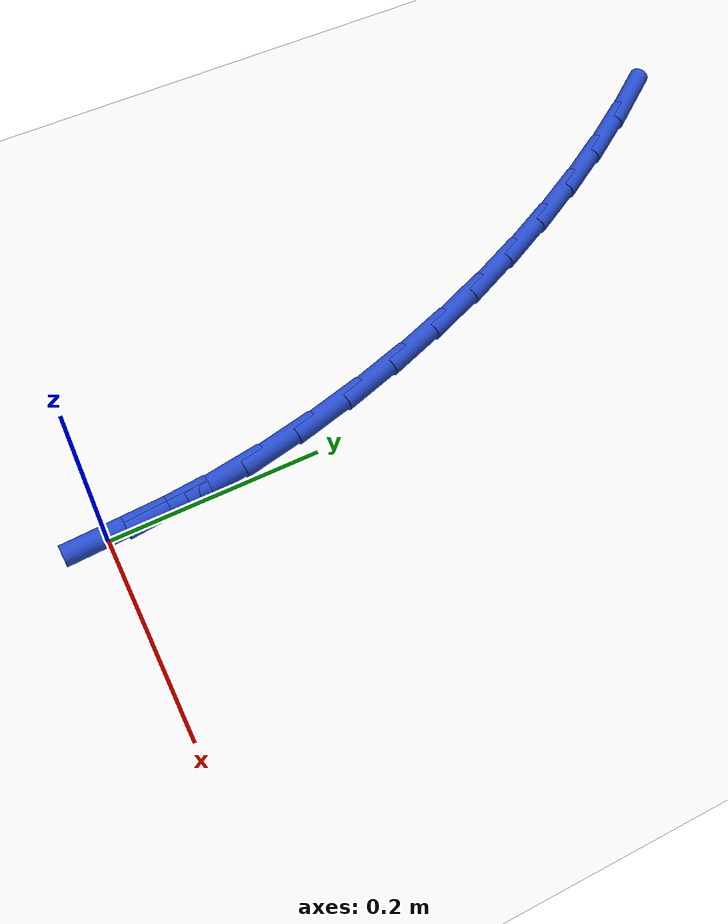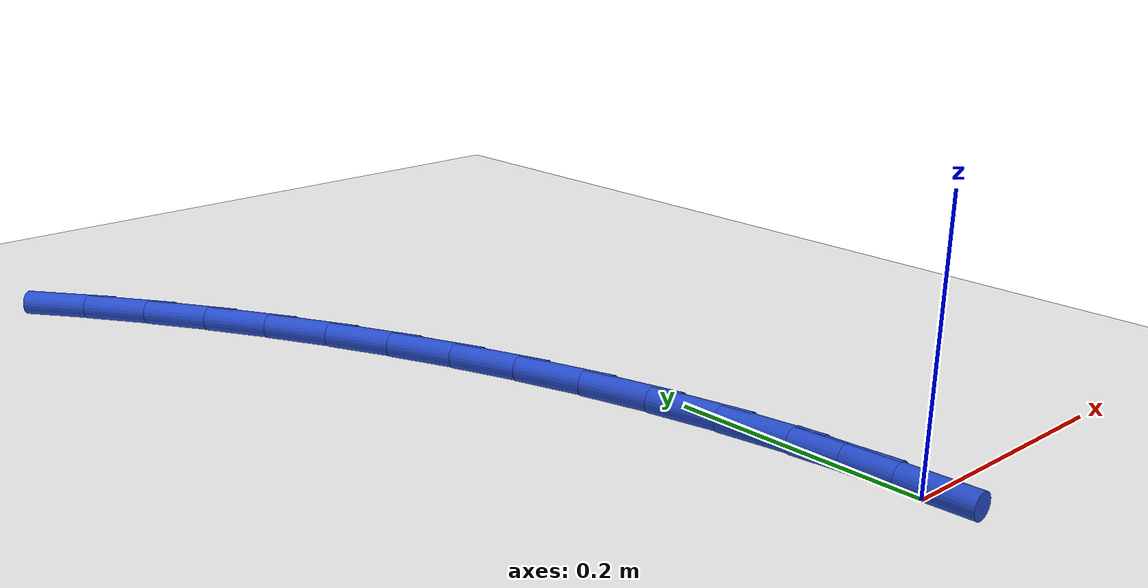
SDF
<sdf version="1.6">
 <world name="default">
  <model name="ground_plane">
   <static>1</static>
   <link name="link">
    <collision name="collision">
     <geometry><plane><normal>0 0 1</normal><size>100 100</size></plane></geometry>
     <surface><friction><ode><mu>100</mu><mu2>50</mu2></ode></friction></surface>
    </collision>
    <visual name="visual">
     <cast_shadows>0</cast_shadows>
     <geometry><plane><normal>0 0 1</normal><size>100 100</size></plane></geometry>
     <material>
      <script><uri>file://media/materials/scripts/gazebo.material</uri><name>Gazebo/WhiteGlow</name></script>
     </material>
    </visual>
   </link>
  </model>
  <model name="line">
   <link name="link_0">
    <pose>3.469446951953614e-17 -1.3877787807814457e-16 0.01 0 1.57 -1.5249691449820464</pose>
    <collision name="collision">
     <geometry><cylinder><radius>0.01</radius><length>0.08</length></cylinder></geometry>
    </collision>
    <visual name="visual">
     <material>
      <script><name>Gazebo/Blue</name><uri>file://media/materials/scripts/gazebo.material</uri></script>
     </material>
     <geometry><cylinder><radius>0.01</radius><length>0.08</length></cylinder></geometry>
    </visual>
   </link>
   <link name="link_1">
    <pose>-0.0026201253751024474 0.05713401550896852 0.01 0 1.57 -1.4662823298546048</pose>
    <collision name="collision">
     <geometry><cylinder><radius>0.01</radius><length>0.08</length></cylinder></geometry>
    </collision>
    <visual name="visual">
     <material>
      <script><name>Gazebo/Blue</name><uri>file://media/materials/scripts/gazebo.material</uri></script>
     </material>
     <geometry><cylinder><radius>0.01</radius><length>0.08</length></cylinder></geometry>
    </visual>
   </link>
   <link name="link_2">
    <pose>-0.008565467711774877 0.11381234942085036 0.01 0 1.57 -1.409943396037971</pose>
    <collision name="collision">
     <geometry><cylinder><radius>0.01</radius><length>0.08</length></cylinder></geometry>
    </collision>
    <visual name="visual">
     <material>
      <script><name>Gazebo/Blue</name><uri>file://media/materials/scripts/gazebo.material</uri></script>
     </material>
     <geometry><cylinder><radius>0.01</radius><length>0.08</length></cylinder></geometry>
    </visual>
   </link>
   <link name="link_3">
    <pose>-0.017676663586495254 0.16996600445761664 0.01 0 1.57 -1.3560580900631707</pose>
    <collision name="collision">
     <geometry><cylinder><radius>0.01</radius><length>0.08</length></cylinder></geometry>
    </collision>
    <visual name="visual">
     <material>
      <script><name>Gazebo/Blue</name><uri>file://media/materials/scripts/gazebo.material</uri></script>
     </material>
     <geometry><cylinder><radius>0.01</radius><length>0.08</length></cylinder></geometry>
    </visual>
   </link>
   <link name="link_4">
    <pose>-0.02979434957574161 0.22552598334123883 0.01 0 1.57 -1.304666011860201</pose>
    <collision name="collision">
     <geometry><cylinder><radius>0.01</radius><length>0.08</length></cylinder></geometry>
    </collision>
    <visual name="visual">
     <material>
      <script><name>Gazebo/Blue</name><uri>file://media/materials/scripts/gazebo.material</uri></script>
     </material>
     <geometry><cylinder><radius>0.01</radius><length>0.08</length></cylinder></geometry>
    </visual>
   </link>
   <link name="link_5">
    <pose>-0.04475916225599199 0.2804232887936883 0.01 0 1.57 -1.2557506976520483</pose>
    <collision name="collision">
     <geometry><cylinder><radius>0.01</radius><length>0.08</length></cylinder></geometry>
    </collision>
    <visual name="visual">
     <material>
      <script><name>Gazebo/Blue</name><uri>file://media/materials/scripts/gazebo.material</uri></script>
     </material>
     <geometry><cylinder><radius>0.01</radius><length>0.08</length></cylinder></geometry>
    </visual>
   </link>
   <link name="link_6">
    <pose>-0.06241173820372445 0.33458892353693637 0.01 0 1.57 -1.2092502591476344</pose>
    <collision name="collision">
     <geometry><cylinder><radius>0.01</radius><length>0.08</length></cylinder></geometry>
    </collision>
    <visual name="visual">
     <material>
      <script><name>Gazebo/Blue</name><uri>file://media/materials/scripts/gazebo.material</uri></script>
     </material>
     <geometry><cylinder><radius>0.01</radius><length>0.08</length></cylinder></geometry>
    </visual>
   </link>
   <link name="link_7">
    <pose>-0.08259271399541693 0.38795389029295446 0.01 0 1.57 -1.165067568374727</pose>
    <collision name="collision">
     <geometry><cylinder><radius>0.01</radius><length>0.08</length></cylinder></geometry>
    </collision>
    <visual name="visual">
     <material>
      <script><name>Gazebo/Blue</name><uri>file://media/materials/scripts/gazebo.material</uri></script>
     </material>
     <geometry><cylinder><radius>0.01</radius><length>0.08</length></cylinder></geometry>
    </visual>
   </link>
   <link name="link_8">
    <pose>-0.1051427262075475 0.4404491917837137 0.01 0 1.57 -1.1230793424892314</pose>
    <collision name="collision">
     <geometry><cylinder><radius>0.01</radius><length>0.08</length></cylinder></geometry>
    </collision>
    <visual name="visual">
     <material>
      <script><name>Gazebo/Blue</name><uri>file://media/materials/scripts/gazebo.material</uri></script>
     </material>
     <geometry><cylinder><radius>0.01</radius><length>0.08</length></cylinder></geometry>
    </visual>
   </link>
   <link name="link_9">
    <pose>-0.1299024114165942 0.4920058307311859 0.01 0 1.57 -1.0829022596027684</pose>
    <collision name="collision">
     <geometry><cylinder><radius>0.01</radius><length>0.08</length></cylinder></geometry>
    </collision>
    <visual name="visual">
     <material>
      <script><name>Gazebo/Blue</name><uri>file://media/materials/scripts/gazebo.material</uri></script>
     </material>
     <geometry><cylinder><radius>0.01</radius><length>0.08</length></cylinder></geometry>
    </visual>
   </link>
   <link name="link_10">
    <pose>-0.1567261533971119 0.5425512321120382 0.01 0 1.57 -1.042847974008835</pose>
    <collision name="collision">
     <geometry><cylinder><radius>0.01</radius><length>0.08</length></cylinder></geometry>
    </collision>
    <visual name="visual">
     <material>
      <script><name>Gazebo/Blue</name><uri>file://media/materials/scripts/gazebo.material</uri></script>
     </material>
     <geometry><cylinder><radius>0.01</radius><length>0.08</length></cylinder></geometry>
    </visual>
   </link>
   <link name="link_11">
    <pose>-0.18555694074545528 0.5919897612595593 0.01 0 1.57 -1.0022077488939667</pose>
    <collision name="collision">
     <geometry><cylinder><radius>0.01</radius><length>0.08</length></cylinder></geometry>
    </collision>
    <visual name="visual">
     <material>
      <script><name>Gazebo/Blue</name><uri>file://media/materials/scripts/gazebo.material</uri></script>
     </material>
     <geometry><cylinder><radius>0.01</radius><length>0.08</length></cylinder></geometry>
    </visual>
   </link>
   <link name="link_12">
    <pose>-0.21637290473974563 0.6402166375295115 0.01 0 1.57 -0.9608996901949785</pose>
    <collision name="collision">
     <geometry><cylinder><radius>0.01</radius><length>0.08</length></cylinder></geometry>
    </collision>
    <visual name="visual">
     <material>
      <script><name>Gazebo/Blue</name><uri>file://media/materials/scripts/gazebo.material</uri></script>
     </material>
     <geometry><cylinder><radius>0.01</radius><length>0.08</length></cylinder></geometry>
    </visual>
   </link>
   <link name="link_13">
    <pose>-0.24915226504865565 0.6871270572737782 0.01 0 1.57 -0.9188499060225123</pose>
    <collision name="collision">
     <geometry><cylinder><radius>0.01</radius><length>0.08</length></cylinder></geometry>
    </collision>
    <visual name="visual">
     <material>
      <script><name>Gazebo/Blue</name><uri>file://media/materials/scripts/gazebo.material</uri></script>
     </material>
     <geometry><cylinder><radius>0.01</radius><length>0.08</length></cylinder></geometry>
    </visual>
   </link>
   <link name="link_121">
    <pose>-0.0026516739615381514 0.05709178628548669 0.01 0 1.57 -1.524383876660928</pose>
    <collision name="collision">
     <geometry><cylinder><radius>0.01</radius><length>0.08</length></cylinder></geometry>
    </collision>
    <visual name="visual">
     <material>
      <script><name>Gazebo/Blue</name><uri>file://media/materials/scripts/gazebo.material</uri></script>
     </material>
     <geometry><cylinder><radius>0.01</radius><length>0.08</length></cylinder></geometry>
    </visual>
   </link>
  </model>
 </world>
</sdf>
